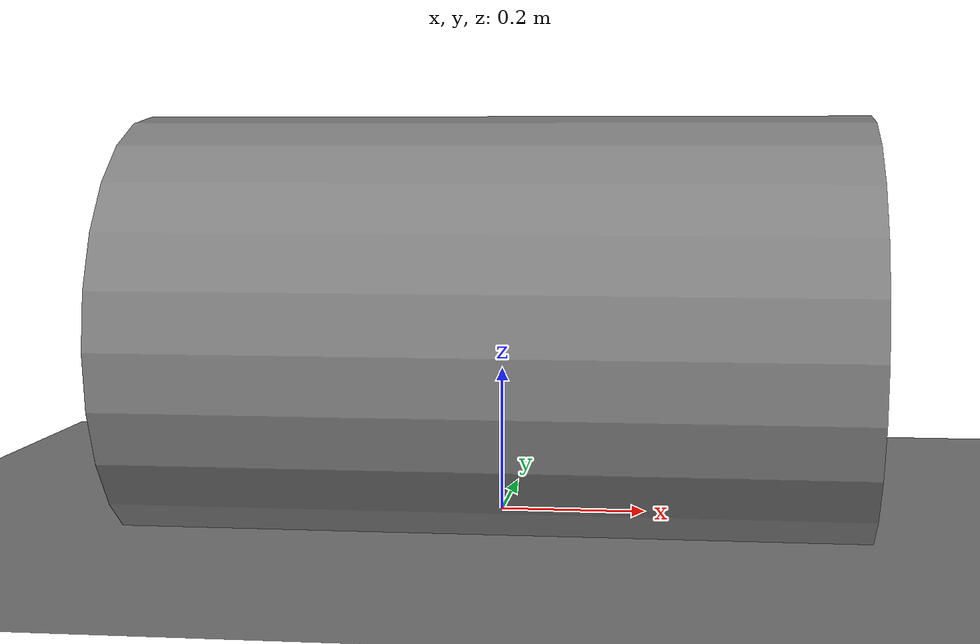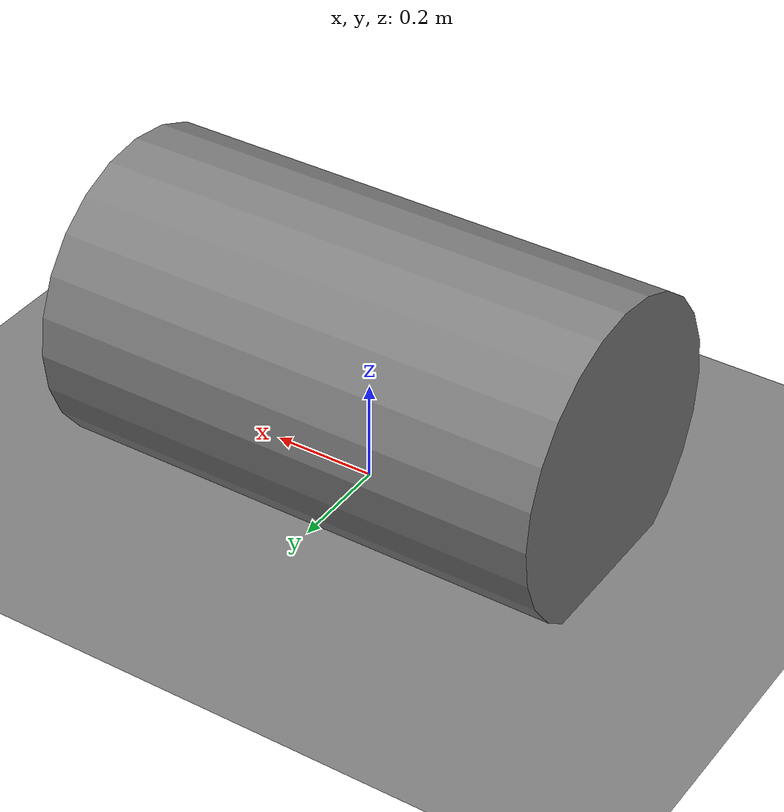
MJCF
<mujoco model="cylinder_plane_horizontal">
            <option gravity="0 0 0" timestep="0.001"/>
            <worldbody>
                <geom name="floor" type="plane" size="10 10 0.1"/>
                <body name="cyl" pos="0 0 0.25" euler="0 90 0">
                    <joint type="free"/>
                    <geom type="cylinder" size="0.3 0.5"/>
                </body>
            </worldbody>
        </mujoco>
